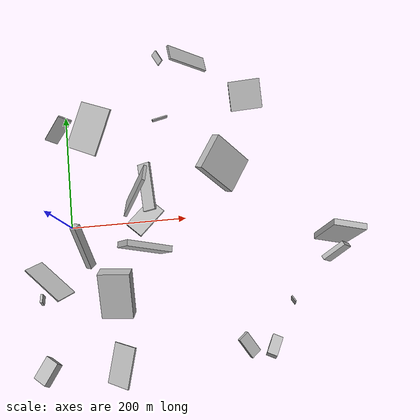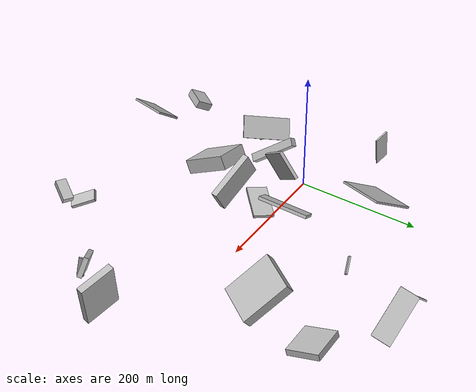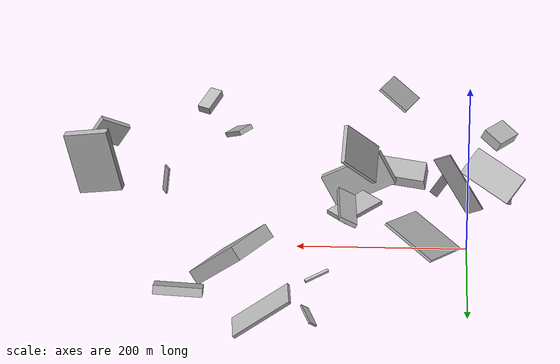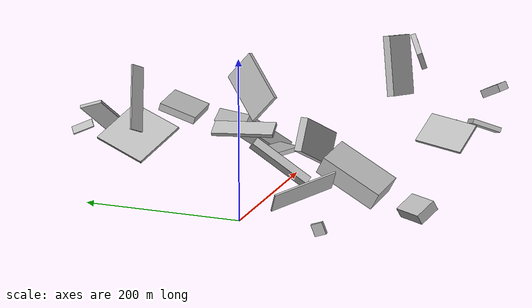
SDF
<sdf version="1.6">
 <world name="default">
  <scene>
   <sky><clouds><speed>12</speed></clouds></sky>
   <ambient>0.4 0.4 0.4 1</ambient>
   <background>0.7 0.7 0.7 1</background>
   <shadows>1</shadows>
  </scene>
  <gravity>0 0 -9.8066</gravity>
  <magnetic_field>6e-06 2.3e-05 -4.2e-05</magnetic_field>
  <physics default="0" name="default_physics" type="ode">
   <ode>
    <solver>
     <type>quick</type>
     <iters>10</iters>
     <sor>1.0</sor>
     <use_dynamic_moi_rescaling>0</use_dynamic_moi_rescaling>
    </solver>
    <constraints>
     <cfm>0</cfm>
     <erp>0.2</erp>
     <contact_max_correcting_vel>100</contact_max_correcting_vel>
     <contact_surface_layer>0.001</contact_surface_layer>
    </constraints>
   </ode>
   <max_step_size>0.004</max_step_size>
   <real_time_factor>1</real_time_factor>
   <real_time_update_rate>250</real_time_update_rate>
  </physics>
  <light name="sun" type="directional">
   <pose>0 0 10 0 0 0</pose>
   <diffuse>0.8 0.8 0.8 1</diffuse>
   <specular>0.2 0.2 0.2 1</specular>
   <attenuation>
    <range>1000</range>
    <constant>0.9</constant>
    <linear>0.01</linear>
    <quadratic>0.001</quadratic>
   </attenuation>
   <direction>-0.5 0.1 -0.9</direction>
  </light>
  <model name="building_1">
   <static>0</static>
   <pose>118.94609993271882 -49.452921374845204 48.71490779231861 -0.046848567159075864 0.4899422878119432 -0.18771971773334273</pose>
   <link name="link">
    <gravity>0</gravity>
    <pose>0 0 21.0 0 0 0</pose>
    <collision name="collision"><geometry><box><size>79 10 42</size></box></geometry></collision>
    <visual name="visual">
     <cast_shadows>0</cast_shadows>
     <geometry><box><size>79 10 42</size></box></geometry>
     <material>
      <script>
       <uri>model://HANNAS_wall/materials/scripts</uri>
       <uri>model://HANNAS_wall/materials/textures</uri>
       <name>vrc/HANNAS_wall</name>
      </script>
     </material>
    </visual>
   </link>
  </model>
  <model name="building_2">
   <static>0</static>
   <pose>120.81704025439225 10.53218909789779 48.74836444547472 1.4290314208402561 0.17043059090324408 0.7761352243057554</pose>
   <link name="link">
    <gravity>0</gravity>
    <pose>0 0 16.0 0 0 0</pose>
    <collision name="collision"><geometry><box><size>58 5 32</size></box></geometry></collision>
    <visual name="visual">
     <cast_shadows>0</cast_shadows>
     <geometry><box><size>58 5 32</size></box></geometry>
     <material>
      <script>
       <uri>model://HANNAS_wall/materials/scripts</uri>
       <uri>model://HANNAS_wall/materials/textures</uri>
       <name>vrc/HANNAS_wall</name>
      </script>
     </material>
    </visual>
   </link>
  </model>
  <model name="building_3">
   <static>0</static>
   <pose>156.68339705727732 168.71920835589262 42.355436242672894 2.1438940278587 -0.8832192038296508 1.447105864213176</pose>
   <link name="link">
    <gravity>0</gravity>
    <pose>0 0 14.5 0 0 0</pose>
    <collision name="collision"><geometry><box><size>4 3 29</size></box></geometry></collision>
    <visual name="visual">
     <cast_shadows>0</cast_shadows>
     <geometry><box><size>4 3 29</size></box></geometry>
     <material>
      <script>
       <uri>model://HANNAS_wall/materials/scripts</uri>
       <uri>model://HANNAS_wall/materials/textures</uri>
       <name>vrc/HANNAS_wall</name>
      </script>
     </material>
    </visual>
   </link>
  </model>
  <model name="building_4">
   <static>0</static>
   <pose>321.9951537257079 203.1231869449598 36.408205488332506 -2.8309992698979216 -0.07028955135633132 0.03053227868157157</pose>
   <link name="link">
    <gravity>0</gravity>
    <pose>0 0 5.0 0 0 0</pose>
    <collision name="collision"><geometry><box><size>55 51 10</size></box></geometry></collision>
    <visual name="visual">
     <cast_shadows>0</cast_shadows>
     <geometry><box><size>55 51 10</size></box></geometry>
     <material>
      <script>
       <uri>model://HANNAS_wall/materials/scripts</uri>
       <uri>model://HANNAS_wall/materials/textures</uri>
       <name>vrc/HANNAS_wall</name>
      </script>
     </material>
    </visual>
   </link>
  </model>
  <model name="building_5">
   <static>0</static>
   <pose>107.92096115635897 8.285247567038418 108.0959207348024 0.9007212657831415 -0.283444818489194 2.711686105252286</pose>
   <link name="link">
    <gravity>0</gravity>
    <pose>0 0 36.0 0 0 0</pose>
    <collision name="collision"><geometry><box><size>5 45 72</size></box></geometry></collision>
    <visual name="visual">
     <cast_shadows>0</cast_shadows>
     <geometry><box><size>5 45 72</size></box></geometry>
     <material>
      <script>
       <uri>model://HANNAS_wall/materials/scripts</uri>
       <uri>model://HANNAS_wall/materials/textures</uri>
       <name>vrc/HANNAS_wall</name>
      </script>
     </material>
    </visual>
   </link>
  </model>
  <model name="building_6">
   <static>0</static>
   <pose>140.8506528580768 48.05333555572162 67.59799558372957 -0.4928541035298045 0.0601697421757292 1.6285374557061358</pose>
   <link name="link">
    <gravity>0</gravity>
    <pose>0 0 2.5 0 0 0</pose>
    <collision name="collision"><geometry><box><size>80 22 5</size></box></geometry></collision>
    <visual name="visual">
     <cast_shadows>0</cast_shadows>
     <geometry><box><size>80 22 5</size></box></geometry>
     <material>
      <script>
       <uri>model://HANNAS_wall/materials/scripts</uri>
       <uri>model://HANNAS_wall/materials/textures</uri>
       <name>vrc/HANNAS_wall</name>
      </script>
     </material>
    </visual>
   </link>
  </model>
  <model name="building_7">
   <static>0</static>
   <pose>289.7966650679693 -215.4837758676389 59.12044983288063 1.2688910047139128 0.37652936079367194 -1.0116285689675122</pose>
   <link name="link">
    <gravity>0</gravity>
    <pose>0 0 9.5 0 0 0</pose>
    <collision name="collision"><geometry><box><size>39 6 19</size></box></geometry></collision>
    <visual name="visual">
     <cast_shadows>0</cast_shadows>
     <geometry><box><size>39 6 19</size></box></geometry>
     <material>
      <script>
       <uri>model://HANNAS_wall/materials/scripts</uri>
       <uri>model://HANNAS_wall/materials/textures</uri>
       <name>vrc/HANNAS_wall</name>
      </script>
     </material>
    </visual>
   </link>
  </model>
  <model name="building_8">
   <static>0</static>
   <pose>367.47173835920717 -158.3332227690107 20.263529320759165 1.4640071991584347 -1.368388721415026 2.198566230122873</pose>
   <link name="link">
    <gravity>0</gravity>
    <pose>0 0 1.0 0 0 0</pose>
    <collision name="collision"><geometry><box><size>35 11 2</size></box></geometry></collision>
    <visual name="visual">
     <cast_shadows>0</cast_shadows>
     <geometry><box><size>35 11 2</size></box></geometry>
     <material>
      <script>
       <uri>model://HANNAS_wall/materials/scripts</uri>
       <uri>model://HANNAS_wall/materials/textures</uri>
       <name>vrc/HANNAS_wall</name>
      </script>
     </material>
    </visual>
   </link>
  </model>
  <model name="building_9">
   <static>0</static>
   <pose>174.32599442801276 284.21894632960226 37.30434915629755 0.6552280615193888 -0.37822881519601714 -1.1618852451639867</pose>
   <link name="link">
    <gravity>0</gravity>
    <pose>0 0 1.0 0 0 0</pose>
    <collision name="collision"><geometry><box><size>28 12 2</size></box></geometry></collision>
    <visual name="visual">
     <cast_shadows>0</cast_shadows>
     <geometry><box><size>28 12 2</size></box></geometry>
     <material>
      <script>
       <uri>model://HANNAS_wall/materials/scripts</uri>
       <uri>model://HANNAS_wall/materials/textures</uri>
       <name>vrc/HANNAS_wall</name>
      </script>
     </material>
    </visual>
   </link>
  </model>
  <model name="building_10">
   <static>0</static>
   <pose>-19.911705862172326 -85.67991493482563 44.02781452401439 -0.7167577592742521 0.22509202159482253 2.3618925113788602</pose>
   <link name="link">
    <gravity>0</gravity>
    <pose>0 0 18.5 0 0 0</pose>
    <collision name="collision"><geometry><box><size>80 2 37</size></box></geometry></collision>
    <visual name="visual">
     <cast_shadows>0</cast_shadows>
     <geometry><box><size>80 2 37</size></box></geometry>
     <material>
      <script>
       <uri>model://HANNAS_wall/materials/scripts</uri>
       <uri>model://HANNAS_wall/materials/textures</uri>
       <name>vrc/HANNAS_wall</name>
      </script>
     </material>
    </visual>
   </link>
  </model>
  <model name="building_11">
   <static>0</static>
   <pose>-53.17699640613574 -126.56129678559415 24.23206300008201 -2.9552585950816237 1.2060213907184927 -1.4373472877786337</pose>
   <link name="link">
    <gravity>0</gravity>
    <pose>0 0 7.5 0 0 0</pose>
    <collision name="collision"><geometry><box><size>15 4 15</size></box></geometry></collision>
    <visual name="visual">
     <cast_shadows>0</cast_shadows>
     <geometry><box><size>15 4 15</size></box></geometry>
     <material>
      <script>
       <uri>model://HANNAS_wall/materials/scripts</uri>
       <uri>model://HANNAS_wall/materials/textures</uri>
       <name>vrc/HANNAS_wall</name>
      </script>
     </material>
    </visual>
   </link>
  </model>
  <model name="building_12">
   <static>0</static>
   <pose>21.470207201663307 -9.890682950490397 93.1167981099635 -2.3997849270667357 -0.6347689126257599 -2.3310369704580047</pose>
   <link name="link">
    <gravity>0</gravity>
    <pose>0 0 40.0 0 0 0</pose>
    <collision name="collision"><geometry><box><size>13 11 80</size></box></geometry></collision>
    <visual name="visual">
     <cast_shadows>0</cast_shadows>
     <geometry><box><size>13 11 80</size></box></geometry>
     <material>
      <script>
       <uri>model://HANNAS_wall/materials/scripts</uri>
       <uri>model://HANNAS_wall/materials/textures</uri>
       <name>vrc/HANNAS_wall</name>
      </script>
     </material>
    </visual>
   </link>
  </model>
  <model name="building_13">
   <static>0</static>
   <pose>245.40595064977043 105.87588223376736 48.69696601866499 -2.9752959605475353 0.9221505837546147 2.7106910986932555</pose>
   <link name="link">
    <gravity>0</gravity>
    <pose>0 0 40.0 0 0 0</pose>
    <collision name="collision"><geometry><box><size>18 66 80</size></box></geometry></collision>
    <visual name="visual">
     <cast_shadows>0</cast_shadows>
     <geometry><box><size>18 66 80</size></box></geometry>
     <material>
      <script>
       <uri>model://HANNAS_wall/materials/scripts</uri>
       <uri>model://HANNAS_wall/materials/textures</uri>
       <name>vrc/HANNAS_wall</name>
      </script>
     </material>
    </visual>
   </link>
  </model>
  <model name="building_14">
   <static>0</static>
   <pose>426.9341137891969 -84.96099180827053 107.23144587464748 -1.1964046503685963 0.45551586985293907 -2.5779248653109526</pose>
   <link name="link">
    <gravity>0</gravity>
    <pose>0 0 3.5 0 0 0</pose>
    <collision name="collision"><geometry><box><size>40 29 7</size></box></geometry></collision>
    <visual name="visual">
     <cast_shadows>0</cast_shadows>
     <geometry><box><size>40 29 7</size></box></geometry>
     <material>
      <script>
       <uri>model://HANNAS_wall/materials/scripts</uri>
       <uri>model://HANNAS_wall/materials/textures</uri>
       <name>vrc/HANNAS_wall</name>
      </script>
     </material>
    </visual>
   </link>
  </model>
  <model name="building_15">
   <static>0</static>
   <pose>310.67963177041827 -219.82142271947666 98.92815720607827 -1.3607575924676492 1.0950429009036644 -1.8412582619735869</pose>
   <link name="link">
    <gravity>0</gravity>
    <pose>0 0 8.0 0 0 0</pose>
    <collision name="collision"><geometry><box><size>10 33 16</size></box></geometry></collision>
    <visual name="visual">
     <cast_shadows>0</cast_shadows>
     <geometry><box><size>10 33 16</size></box></geometry>
     <material>
      <script>
       <uri>model://HANNAS_wall/materials/scripts</uri>
       <uri>model://HANNAS_wall/materials/textures</uri>
       <name>vrc/HANNAS_wall</name>
      </script>
     </material>
    </visual>
   </link>
  </model>
  <model name="building_16">
   <static>0</static>
   <pose>35.35223222692045 117.222037270606 71.91833842885934 -1.365768766537697 -0.49998316674205867 -0.5202569131424196</pose>
   <link name="link">
    <gravity>0</gravity>
    <pose>0 0 40.0 0 0 0</pose>
    <collision name="collision"><geometry><box><size>67 3 80</size></box></geometry></collision>
    <visual name="visual">
     <cast_shadows>0</cast_shadows>
     <geometry><box><size>67 3 80</size></box></geometry>
     <material>
      <script>
       <uri>model://HANNAS_wall/materials/scripts</uri>
       <uri>model://HANNAS_wall/materials/textures</uri>
       <name>vrc/HANNAS_wall</name>
      </script>
     </material>
    </visual>
   </link>
  </model>
  <model name="building_17">
   <static>0</static>
   <pose>83.07385595688807 -230.18424090553742 111.16429648007716 -3.056086709490872 -0.6371782028401666 -0.3089893053947315</pose>
   <link name="link">
    <gravity>0</gravity>
    <pose>0 0 1.5 0 0 0</pose>
    <collision name="collision"><geometry><box><size>42 62 3</size></box></geometry></collision>
    <visual name="visual">
     <cast_shadows>0</cast_shadows>
     <geometry><box><size>42 62 3</size></box></geometry>
     <material>
      <script>
       <uri>model://HANNAS_wall/materials/scripts</uri>
       <uri>model://HANNAS_wall/materials/textures</uri>
       <name>vrc/HANNAS_wall</name>
      </script>
     </material>
    </visual>
   </link>
  </model>
  <model name="building_18">
   <static>0</static>
   <pose>418.37603784201053 -49.36316040104409 86.9428523346827 2.29905525061007 -1.3086269809833473 0.6419548036863137</pose>
   <link name="link">
    <gravity>0</gravity>
    <pose>0 0 27.0 0 0 0</pose>
    <collision name="collision"><geometry><box><size>80 10 54</size></box></geometry></collision>
    <visual name="visual">
     <cast_shadows>0</cast_shadows>
     <geometry><box><size>80 10 54</size></box></geometry>
     <material>
      <script>
       <uri>model://HANNAS_wall/materials/scripts</uri>
       <uri>model://HANNAS_wall/materials/textures</uri>
       <name>vrc/HANNAS_wall</name>
      </script>
     </material>
    </visual>
   </link>
  </model>
  <model name="building_19">
   <static>0</static>
   <pose>-6.243902186881715 130.0552355611798 101.16722181100432 0.3273105705377252 -0.4187180724228117 2.781356377928686</pose>
   <link name="link">
    <gravity>0</gravity>
    <pose>0 0 40.0 0 0 0</pose>
    <collision name="collision"><geometry><box><size>21 2 80</size></box></geometry></collision>
    <visual name="visual">
     <cast_shadows>0</cast_shadows>
     <geometry><box><size>21 2 80</size></box></geometry>
     <material>
      <script>
       <uri>model://HANNAS_wall/materials/scripts</uri>
       <uri>model://HANNAS_wall/materials/textures</uri>
       <name>vrc/HANNAS_wall</name>
      </script>
     </material>
    </visual>
   </link>
  </model>
  <model name="building_20">
   <static>0</static>
   <pose>77.49194189834913 -115.76144842764867 38.29120943061049 0.5049745810626982 -0.11625018288402467 -0.09106663486197746</pose>
   <link name="link">
    <gravity>0</gravity>
    <pose>0 0 11.5 0 0 0</pose>
    <collision name="collision"><geometry><box><size>53 80 23</size></box></geometry></collision>
    <visual name="visual">
     <cast_shadows>0</cast_shadows>
     <geometry><box><size>53 80 23</size></box></geometry>
     <material>
      <script>
       <uri>model://HANNAS_wall/materials/scripts</uri>
       <uri>model://HANNAS_wall/materials/textures</uri>
       <name>vrc/HANNAS_wall</name>
      </script>
     </material>
    </visual>
   </link>
  </model>
  <model name="building_21">
   <static>0</static>
   <pose>226.93563199667585 263.409604537409 44.20574899021173 1.9715709150088587 -0.6439211573403406 2.9928481995717693</pose>
   <link name="link">
    <gravity>0</gravity>
    <pose>0 0 15.0 0 0 0</pose>
    <collision name="collision"><geometry><box><size>78 4 30</size></box></geometry></collision>
    <visual name="visual">
     <cast_shadows>0</cast_shadows>
     <geometry><box><size>78 4 30</size></box></geometry>
     <material>
      <script>
       <uri>model://HANNAS_wall/materials/scripts</uri>
       <uri>model://HANNAS_wall/materials/textures</uri>
       <name>vrc/HANNAS_wall</name>
      </script>
     </material>
    </visual>
   </link>
  </model>
  <model name="building_22">
   <static>0</static>
   <pose>-50.673618632610385 -228.21885952520302 49.289456757693934 -0.08242659204876454 1.0476202572910824 -0.667100599117386</pose>
   <link name="link">
    <gravity>0</gravity>
    <pose>0 0 13.5 0 0 0</pose>
    <collision name="collision"><geometry><box><size>13 39 27</size></box></geometry></collision>
    <visual name="visual">
     <cast_shadows>0</cast_shadows>
     <geometry><box><size>13 39 27</size></box></geometry>
     <material>
      <script>
       <uri>model://HANNAS_wall/materials/scripts</uri>
       <uri>model://HANNAS_wall/materials/textures</uri>
       <name>vrc/HANNAS_wall</name>
      </script>
     </material>
    </visual>
   </link>
  </model>
 </world>
</sdf>
